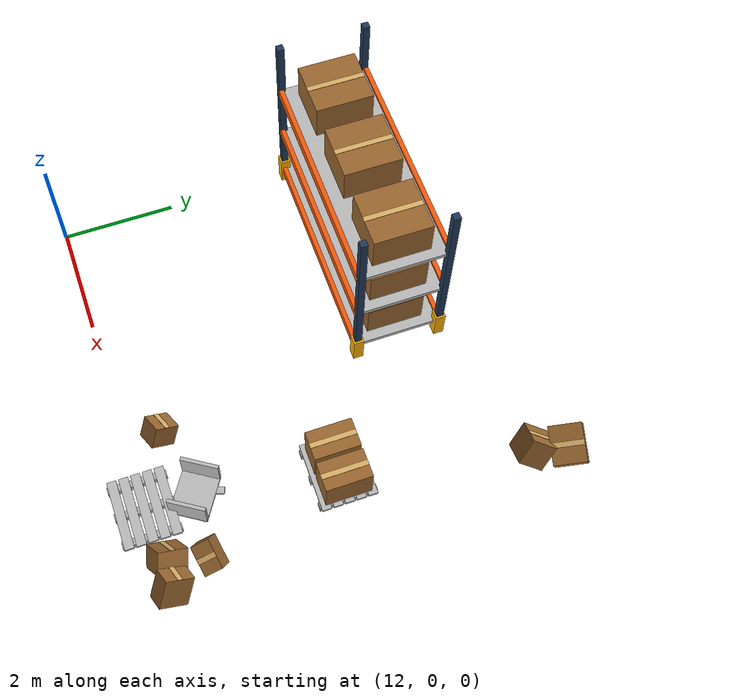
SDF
<sdf version="1.9">
 <world name="factory">
  <model name="rack_1_1_2">
   <static>true</static>
   <pose>14 5 0 0 0 0</pose>
   <link name="body">
    <visual name="post0_visual">
     <pose>-2 -0.75 1.8 0 0 0</pose>
     <geometry><box><size>0.12 0.12 3.6</size></box></geometry>
     <material><ambient>.12 .22 .34 1</ambient><diffuse>.12 .22 .34 1</diffuse></material>
    </visual>
    <collision name="post0_collision">
     <pose>-2 -0.75 1.8 0 0 0</pose>
     <geometry><box><size>0.12 0.12 3.6</size></box></geometry>
    </collision>
    <visual name="guard0_visual">
     <pose>-2 -0.75 0.275 0 0 0</pose>
     <geometry><box><size>0.18 0.18 0.55</size></box></geometry>
     <material><ambient>1 .7 .02 1</ambient><diffuse>1 .7 .02 1</diffuse></material>
    </visual>
    <collision name="guard0_collision">
     <pose>-2 -0.75 0.275 0 0 0</pose>
     <geometry><box><size>0.18 0.18 0.55</size></box></geometry>
    </collision>
    <visual name="post1_visual">
     <pose>2 -0.75 1.8 0 0 0</pose>
     <geometry><box><size>0.12 0.12 3.6</size></box></geometry>
     <material><ambient>.12 .22 .34 1</ambient><diffuse>.12 .22 .34 1</diffuse></material>
    </visual>
    <collision name="post1_collision">
     <pose>2 -0.75 1.8 0 0 0</pose>
     <geometry><box><size>0.12 0.12 3.6</size></box></geometry>
    </collision>
    <visual name="guard1_visual">
     <pose>2 -0.75 0.275 0 0 0</pose>
     <geometry><box><size>0.18 0.18 0.55</size></box></geometry>
     <material><ambient>1 .7 .02 1</ambient><diffuse>1 .7 .02 1</diffuse></material>
    </visual>
    <collision name="guard1_collision">
     <pose>2 -0.75 0.275 0 0 0</pose>
     <geometry><box><size>0.18 0.18 0.55</size></box></geometry>
    </collision>
    <visual name="post2_visual">
     <pose>-2 0.75 1.8 0 0 0</pose>
     <geometry><box><size>0.12 0.12 3.6</size></box></geometry>
     <material><ambient>.12 .22 .34 1</ambient><diffuse>.12 .22 .34 1</diffuse></material>
    </visual>
    <collision name="post2_collision">
     <pose>-2 0.75 1.8 0 0 0</pose>
     <geometry><box><size>0.12 0.12 3.6</size></box></geometry>
    </collision>
    <visual name="guard2_visual">
     <pose>-2 0.75 0.275 0 0 0</pose>
     <geometry><box><size>0.18 0.18 0.55</size></box></geometry>
     <material><ambient>1 .7 .02 1</ambient><diffuse>1 .7 .02 1</diffuse></material>
    </visual>
    <collision name="guard2_collision">
     <pose>-2 0.75 0.275 0 0 0</pose>
     <geometry><box><size>0.18 0.18 0.55</size></box></geometry>
    </collision>
    <visual name="post3_visual">
     <pose>2 0.75 1.8 0 0 0</pose>
     <geometry><box><size>0.12 0.12 3.6</size></box></geometry>
     <material><ambient>.12 .22 .34 1</ambient><diffuse>.12 .22 .34 1</diffuse></material>
    </visual>
    <collision name="post3_collision">
     <pose>2 0.75 1.8 0 0 0</pose>
     <geometry><box><size>0.12 0.12 3.6</size></box></geometry>
    </collision>
    <visual name="guard3_visual">
     <pose>2 0.75 0.275 0 0 0</pose>
     <geometry><box><size>0.18 0.18 0.55</size></box></geometry>
     <material><ambient>1 .7 .02 1</ambient><diffuse>1 .7 .02 1</diffuse></material>
    </visual>
    <collision name="guard3_collision">
     <pose>2 0.75 0.275 0 0 0</pose>
     <geometry><box><size>0.18 0.18 0.55</size></box></geometry>
    </collision>
    <visual name="shelf0_visual">
     <pose>0 0 0.3 0 0 0</pose>
     <geometry><mesh><uri>model://factory_scene_assets/meshes/wood_010.dae</uri></mesh></geometry>
    </visual>
    <collision name="shelf0_collision">
     <pose>0 0 0.3 0 0 0</pose>
     <geometry><box><size>4 1.5 0.08</size></box></geometry>
    </collision>
    <visual name="beam0_0_visual">
     <pose>0 -0.77 0.3 0 0 0</pose>
     <geometry><box><size>4 0.08 0.18</size></box></geometry>
     <material><ambient>.95 .35 .035 1</ambient><diffuse>.95 .35 .035 1</diffuse></material>
    </visual>
    <collision name="beam0_0_collision">
     <pose>0 -0.77 0.3 0 0 0</pose>
     <geometry><box><size>4 0.08 0.18</size></box></geometry>
    </collision>
    <visual name="beam0_1_visual">
     <pose>0 0.77 0.3 0 0 0</pose>
     <geometry><box><size>4 0.08 0.18</size></box></geometry>
     <material><ambient>.95 .35 .035 1</ambient><diffuse>.95 .35 .035 1</diffuse></material>
    </visual>
    <collision name="beam0_1_collision">
     <pose>0 0.77 0.3 0 0 0</pose>
     <geometry><box><size>4 0.08 0.18</size></box></geometry>
    </collision>
    <visual name="cargo0_0_visual">
     <pose>-1.35 0 0.665 0 0 0</pose>
     <geometry><box><size>0.95 1 0.65</size></box></geometry>
     <material><ambient>.60 .40 .18 1</ambient><diffuse>.60 .40 .18 1</diffuse></material>
    </visual>
    <collision name="cargo0_0_collision">
     <pose>-1.35 0 0.665 0 0 0</pose>
     <geometry><box><size>0.95 1 0.65</size></box></geometry>
    </collision>
    <visual name="cargo0_0_tape_visual">
     <pose>-1.35 0 0.993 0 0 0</pose>
     <geometry><box><size>0.09 1 0.006</size></box></geometry>
     <material><ambient>.85 .69 .4 1</ambient><diffuse>.85 .69 .4 1</diffuse></material>
    </visual>
    <visual name="cargo0_1_visual">
     <pose>0 0 0.665 0 0 0</pose>
     <geometry><box><size>0.95 1 0.65</size></box></geometry>
     <material><ambient>.60 .40 .18 1</ambient><diffuse>.60 .40 .18 1</diffuse></material>
    </visual>
    <collision name="cargo0_1_collision">
     <pose>0 0 0.665 0 0 0</pose>
     <geometry><box><size>0.95 1 0.65</size></box></geometry>
    </collision>
    <visual name="cargo0_1_tape_visual">
     <pose>0 0 0.993 0 0 0</pose>
     <geometry><box><size>0.09 1 0.006</size></box></geometry>
     <material><ambient>.85 .69 .4 1</ambient><diffuse>.85 .69 .4 1</diffuse></material>
    </visual>
    <visual name="cargo0_2_visual">
     <pose>1.35 0 0.665 0 0 0</pose>
     <geometry><box><size>0.95 1 0.65</size></box></geometry>
     <material><ambient>.60 .40 .18 1</ambient><diffuse>.60 .40 .18 1</diffuse></material>
    </visual>
    <collision name="cargo0_2_collision">
     <pose>1.35 0 0.665 0 0 0</pose>
     <geometry><box><size>0.95 1 0.65</size></box></geometry>
    </collision>
    <visual name="cargo0_2_tape_visual">
     <pose>1.35 0 0.993 0 0 0</pose>
     <geometry><box><size>0.09 1 0.006</size></box></geometry>
     <material><ambient>.85 .69 .4 1</ambient><diffuse>.85 .69 .4 1</diffuse></material>
    </visual>
    <visual name="shelf1_visual">
     <pose>0 0 1.4 0 0 0</pose>
     <geometry><mesh><uri>model://factory_scene_assets/meshes/wood_010.dae</uri></mesh></geometry>
    </visual>
    <collision name="shelf1_collision">
     <pose>0 0 1.4 0 0 0</pose>
     <geometry><box><size>4 1.5 0.08</size></box></geometry>
    </collision>
    <visual name="beam1_0_visual">
     <pose>0 -0.77 1.4 0 0 0</pose>
     <geometry><box><size>4 0.08 0.18</size></box></geometry>
     <material><ambient>.95 .35 .035 1</ambient><diffuse>.95 .35 .035 1</diffuse></material>
    </visual>
    <collision name="beam1_0_collision">
     <pose>0 -0.77 1.4 0 0 0</pose>
     <geometry><box><size>4 0.08 0.18</size></box></geometry>
    </collision>
    <visual name="beam1_1_visual">
     <pose>0 0.77 1.4 0 0 0</pose>
     <geometry><box><size>4 0.08 0.18</size></box></geometry>
     <material><ambient>.95 .35 .035 1</ambient><diffuse>.95 .35 .035 1</diffuse></material>
    </visual>
    <collision name="beam1_1_collision">
     <pose>0 0.77 1.4 0 0 0</pose>
     <geometry><box><size>4 0.08 0.18</size></box></geometry>
    </collision>
    <visual name="cargo1_0_visual">
     <pose>-1.35 0 1.765 0 0 0</pose>
     <geometry><box><size>0.95 1 0.65</size></box></geometry>
     <material><ambient>.60 .40 .18 1</ambient><diffuse>.60 .40 .18 1</diffuse></material>
    </visual>
    <collision name="cargo1_0_collision">
     <pose>-1.35 0 1.765 0 0 0</pose>
     <geometry><box><size>0.95 1 0.65</size></box></geometry>
    </collision>
    <visual name="cargo1_0_tape_visual">
     <pose>-1.35 0 2.093 0 0 0</pose>
     <geometry><box><size>0.09 1 0.006</size></box></geometry>
     <material><ambient>.85 .69 .4 1</ambient><diffuse>.85 .69 .4 1</diffuse></material>
    </visual>
    <visual name="cargo1_1_visual">
     <pose>0 0 1.765 0 0 0</pose>
     <geometry><box><size>0.95 1 0.65</size></box></geometry>
     <material><ambient>.60 .40 .18 1</ambient><diffuse>.60 .40 .18 1</diffuse></material>
    </visual>
    <collision name="cargo1_1_collision">
     <pose>0 0 1.765 0 0 0</pose>
     <geometry><box><size>0.95 1 0.65</size></box></geometry>
    </collision>
    <visual name="cargo1_1_tape_visual">
     <pose>0 0 2.093 0 0 0</pose>
     <geometry><box><size>0.09 1 0.006</size></box></geometry>
     <material><ambient>.85 .69 .4 1</ambient><diffuse>.85 .69 .4 1</diffuse></material>
    </visual>
    <visual name="cargo1_2_visual">
     <pose>1.35 0 1.765 0 0 0</pose>
     <geometry><box><size>0.95 1 0.65</size></box></geometry>
     <material><ambient>.60 .40 .18 1</ambient><diffuse>.60 .40 .18 1</diffuse></material>
    </visual>
    <collision name="cargo1_2_collision">
     <pose>1.35 0 1.765 0 0 0</pose>
     <geometry><box><size>0.95 1 0.65</size></box></geometry>
    </collision>
    <visual name="cargo1_2_tape_visual">
     <pose>1.35 0 2.093 0 0 0</pose>
     <geometry><box><size>0.09 1 0.006</size></box></geometry>
     <material><ambient>.85 .69 .4 1</ambient><diffuse>.85 .69 .4 1</diffuse></material>
    </visual>
    <visual name="shelf2_visual">
     <pose>0 0 2.5 0 0 0</pose>
     <geometry><mesh><uri>model://factory_scene_assets/meshes/wood_010.dae</uri></mesh></geometry>
    </visual>
    <collision name="shelf2_collision">
     <pose>0 0 2.5 0 0 0</pose>
     <geometry><box><size>4 1.5 0.08</size></box></geometry>
    </collision>
    <visual name="beam2_0_visual">
     <pose>0 -0.77 2.5 0 0 0</pose>
     <geometry><box><size>4 0.08 0.18</size></box></geometry>
     <material><ambient>.95 .35 .035 1</ambient><diffuse>.95 .35 .035 1</diffuse></material>
    </visual>
    <collision name="beam2_0_collision">
     <pose>0 -0.77 2.5 0 0 0</pose>
     <geometry><box><size>4 0.08 0.18</size></box></geometry>
    </collision>
    <visual name="beam2_1_visual">
     <pose>0 0.77 2.5 0 0 0</pose>
     <geometry><box><size>4 0.08 0.18</size></box></geometry>
     <material><ambient>.95 .35 .035 1</ambient><diffuse>.95 .35 .035 1</diffuse></material>
    </visual>
    <collision name="beam2_1_collision">
     <pose>0 0.77 2.5 0 0 0</pose>
     <geometry><box><size>4 0.08 0.18</size></box></geometry>
    </collision>
    <visual name="cargo2_0_visual">
     <pose>-1.35 0 2.865 0 0 0</pose>
     <geometry><box><size>0.95 1 0.65</size></box></geometry>
     <material><ambient>.60 .40 .18 1</ambient><diffuse>.60 .40 .18 1</diffuse></material>
    </visual>
    <collision name="cargo2_0_collision">
     <pose>-1.35 0 2.865 0 0 0</pose>
     <geometry><box><size>0.95 1 0.65</size></box></geometry>
    </collision>
    <visual name="cargo2_0_tape_visual">
     <pose>-1.35 0 3.193 0 0 0</pose>
     <geometry><box><size>0.09 1 0.006</size></box></geometry>
     <material><ambient>.85 .69 .4 1</ambient><diffuse>.85 .69 .4 1</diffuse></material>
    </visual>
    <visual name="cargo2_1_visual">
     <pose>0 0 2.865 0 0 0</pose>
     <geometry><box><size>0.95 1 0.65</size></box></geometry>
     <material><ambient>.60 .40 .18 1</ambient><diffuse>.60 .40 .18 1</diffuse></material>
    </visual>
    <collision name="cargo2_1_collision">
     <pose>0 0 2.865 0 0 0</pose>
     <geometry><box><size>0.95 1 0.65</size></box></geometry>
    </collision>
    <visual name="cargo2_1_tape_visual">
     <pose>0 0 3.193 0 0 0</pose>
     <geometry><box><size>0.09 1 0.006</size></box></geometry>
     <material><ambient>.85 .69 .4 1</ambient><diffuse>.85 .69 .4 1</diffuse></material>
    </visual>
    <visual name="cargo2_2_visual">
     <pose>1.35 0 2.865 0 0 0</pose>
     <geometry><box><size>0.95 1 0.65</size></box></geometry>
     <material><ambient>.60 .40 .18 1</ambient><diffuse>.60 .40 .18 1</diffuse></material>
    </visual>
    <collision name="cargo2_2_collision">
     <pose>1.35 0 2.865 0 0 0</pose>
     <geometry><box><size>0.95 1 0.65</size></box></geometry>
    </collision>
    <visual name="cargo2_2_tape_visual">
     <pose>1.35 0 3.193 0 0 0</pose>
     <geometry><box><size>0.09 1 0.006</size></box></geometry>
     <material><ambient>.85 .69 .4 1</ambient><diffuse>.85 .69 .4 1</diffuse></material>
    </visual>
   </link>
  </model>
  <model name="organized_pallet_1_2">
   <static>true</static>
   <pose>18 3.2 0 0 0 0</pose>
   <link name="body">
    <visual name="runner0_visual">
     <pose>-0.48 0 0.065 0 0 0</pose>
     <geometry><mesh><uri>model://factory_scene_assets/meshes/wood_011.dae</uri></mesh></geometry>
    </visual>
    <collision name="runner0_collision">
     <pose>-0.48 0 0.065 0 0 0</pose>
     <geometry><box><size>0.12 1 0.13</size></box></geometry>
    </collision>
    <visual name="runner1_visual">
     <pose>0 0 0.065 0 0 0</pose>
     <geometry><mesh><uri>model://factory_scene_assets/meshes/wood_011.dae</uri></mesh></geometry>
    </visual>
    <collision name="runner1_collision">
     <pose>0 0 0.065 0 0 0</pose>
     <geometry><box><size>0.12 1 0.13</size></box></geometry>
    </collision>
    <visual name="runner2_visual">
     <pose>0.48 0 0.065 0 0 0</pose>
     <geometry><mesh><uri>model://factory_scene_assets/meshes/wood_011.dae</uri></mesh></geometry>
    </visual>
    <collision name="runner2_collision">
     <pose>0.48 0 0.065 0 0 0</pose>
     <geometry><box><size>0.12 1 0.13</size></box></geometry>
    </collision>
    <visual name="plank0_visual">
     <pose>0 -0.4 0.155 0 0 0</pose>
     <geometry><mesh><uri>model://factory_scene_assets/meshes/wood_012.dae</uri></mesh></geometry>
    </visual>
    <collision name="plank0_collision">
     <pose>0 -0.4 0.155 0 0 0</pose>
     <geometry><box><size>1.2 0.16 0.05</size></box></geometry>
    </collision>
    <visual name="plank1_visual">
     <pose>0 -0.2 0.155 0 0 0</pose>
     <geometry><mesh><uri>model://factory_scene_assets/meshes/wood_012.dae</uri></mesh></geometry>
    </visual>
    <collision name="plank1_collision">
     <pose>0 -0.2 0.155 0 0 0</pose>
     <geometry><box><size>1.2 0.16 0.05</size></box></geometry>
    </collision>
    <visual name="plank2_visual">
     <pose>0 0 0.155 0 0 0</pose>
     <geometry><mesh><uri>model://factory_scene_assets/meshes/wood_012.dae</uri></mesh></geometry>
    </visual>
    <collision name="plank2_collision">
     <pose>0 0 0.155 0 0 0</pose>
     <geometry><box><size>1.2 0.16 0.05</size></box></geometry>
    </collision>
    <visual name="plank3_visual">
     <pose>0 0.2 0.155 0 0 0</pose>
     <geometry><mesh><uri>model://factory_scene_assets/meshes/wood_012.dae</uri></mesh></geometry>
    </visual>
    <collision name="plank3_collision">
     <pose>0 0.2 0.155 0 0 0</pose>
     <geometry><box><size>1.2 0.16 0.05</size></box></geometry>
    </collision>
    <visual name="plank4_visual">
     <pose>0 0.4 0.155 0 0 0</pose>
     <geometry><mesh><uri>model://factory_scene_assets/meshes/wood_012.dae</uri></mesh></geometry>
    </visual>
    <collision name="plank4_collision">
     <pose>0 0.4 0.155 0 0 0</pose>
     <geometry><box><size>1.2 0.16 0.05</size></box></geometry>
    </collision>
    <visual name="load0_visual">
     <pose>-0.28 0 0.505 0 0 0</pose>
     <geometry><box><size>0.5 0.8 0.65</size></box></geometry>
     <material><ambient>.60 .40 .18 1</ambient><diffuse>.60 .40 .18 1</diffuse></material>
    </visual>
    <collision name="load0_collision">
     <pose>-0.28 0 0.505 0 0 0</pose>
     <geometry><box><size>0.5 0.8 0.65</size></box></geometry>
    </collision>
    <visual name="load0_tape_visual">
     <pose>-0.28 0 0.833 0 0 0</pose>
     <geometry><box><size>0.09 0.8 0.006</size></box></geometry>
     <material><ambient>.85 .69 .4 1</ambient><diffuse>.85 .69 .4 1</diffuse></material>
    </visual>
    <visual name="load1_visual">
     <pose>0.28 0 0.505 0 0 0</pose>
     <geometry><box><size>0.5 0.8 0.65</size></box></geometry>
     <material><ambient>.60 .40 .18 1</ambient><diffuse>.60 .40 .18 1</diffuse></material>
    </visual>
    <collision name="load1_collision">
     <pose>0.28 0 0.505 0 0 0</pose>
     <geometry><box><size>0.5 0.8 0.65</size></box></geometry>
    </collision>
    <visual name="load1_tape_visual">
     <pose>0.28 0 0.833 0 0 0</pose>
     <geometry><box><size>0.09 0.8 0.006</size></box></geometry>
     <material><ambient>.85 .69 .4 1</ambient><diffuse>.85 .69 .4 1</diffuse></material>
    </visual>
   </link>
  </model>
  <model name="fallen_pallet_4">
   <static>true</static>
   <pose>17.6 0 0 0 0 0</pose>
   <link name="body">
    <visual name="runner0_visual">
     <pose>-0.48 0 0.065 0 0 0</pose>
     <geometry><mesh><uri>model://factory_scene_assets/meshes/wood_011.dae</uri></mesh></geometry>
    </visual>
    <collision name="runner0_collision">
     <pose>-0.48 0 0.065 0 0 0</pose>
     <geometry><box><size>0.12 1 0.13</size></box></geometry>
    </collision>
    <visual name="runner1_visual">
     <pose>0 0 0.065 0 0 0</pose>
     <geometry><mesh><uri>model://factory_scene_assets/meshes/wood_011.dae</uri></mesh></geometry>
    </visual>
    <collision name="runner1_collision">
     <pose>0 0 0.065 0 0 0</pose>
     <geometry><box><size>0.12 1 0.13</size></box></geometry>
    </collision>
    <visual name="runner2_visual">
     <pose>0.48 0 0.065 0 0 0</pose>
     <geometry><mesh><uri>model://factory_scene_assets/meshes/wood_011.dae</uri></mesh></geometry>
    </visual>
    <collision name="runner2_collision">
     <pose>0.48 0 0.065 0 0 0</pose>
     <geometry><box><size>0.12 1 0.13</size></box></geometry>
    </collision>
    <visual name="plank0_visual">
     <pose>0 -0.4 0.155 0 0 0</pose>
     <geometry><mesh><uri>model://factory_scene_assets/meshes/wood_012.dae</uri></mesh></geometry>
    </visual>
    <collision name="plank0_collision">
     <pose>0 -0.4 0.155 0 0 0</pose>
     <geometry><box><size>1.2 0.16 0.05</size></box></geometry>
    </collision>
    <visual name="plank1_visual">
     <pose>0 -0.2 0.155 0 0 0</pose>
     <geometry><mesh><uri>model://factory_scene_assets/meshes/wood_012.dae</uri></mesh></geometry>
    </visual>
    <collision name="plank1_collision">
     <pose>0 -0.2 0.155 0 0 0</pose>
     <geometry><box><size>1.2 0.16 0.05</size></box></geometry>
    </collision>
    <visual name="plank2_visual">
     <pose>0 0 0.155 0 0 0</pose>
     <geometry><mesh><uri>model://factory_scene_assets/meshes/wood_012.dae</uri></mesh></geometry>
    </visual>
    <collision name="plank2_collision">
     <pose>0 0 0.155 0 0 0</pose>
     <geometry><box><size>1.2 0.16 0.05</size></box></geometry>
    </collision>
    <visual name="plank3_visual">
     <pose>0 0.2 0.155 0 0 0</pose>
     <geometry><mesh><uri>model://factory_scene_assets/meshes/wood_012.dae</uri></mesh></geometry>
    </visual>
    <collision name="plank3_collision">
     <pose>0 0.2 0.155 0 0 0</pose>
     <geometry><box><size>1.2 0.16 0.05</size></box></geometry>
    </collision>
    <visual name="plank4_visual">
     <pose>0 0.4 0.155 0 0 0</pose>
     <geometry><mesh><uri>model://factory_scene_assets/meshes/wood_012.dae</uri></mesh></geometry>
    </visual>
    <collision name="plank4_collision">
     <pose>0 0.4 0.155 0 0 0</pose>
     <geometry><box><size>1.2 0.16 0.05</size></box></geometry>
    </collision>
   </link>
  </model>
  <model name="fallen_box_04_0">
   <static>true</static>
   <pose>18.6 0.134438 0 0 0 0</pose>
   <link name="body">
    <visual name="box_visual">
     <pose>0 0 0.3884788 0.8462538 -0.4188346 -1.565177</pose>
     <geometry><box><size>0.5086928 0.4635717 0.3847288</size></box></geometry>
     <material><ambient>.60 .40 .18 1</ambient><diffuse>.60 .40 .18 1</diffuse></material>
    </visual>
    <collision name="box_collision">
     <pose>0 0 0.3884788 0.8462538 -0.4188346 -1.565177</pose>
     <geometry><box><size>0.5086928 0.4635717 0.3847288</size></box></geometry>
    </collision>
    <visual name="box_tape_visual">
     <pose>-0.146583 0.05183864 0.5067726 0.8462538 -0.4188346 -1.565177</pose>
     <geometry><box><size>0.09 0.4635717 0.006</size></box></geometry>
     <material><ambient>.85 .69 .4 1</ambient><diffuse>.85 .69 .4 1</diffuse></material>
    </visual>
   </link>
  </model>
  <model name="fallen_box_04_2">
   <static>true</static>
   <pose>18.76 0.7824152 0 0 0 0</pose>
   <link name="body">
    <visual name="box_visual">
     <pose>0 0 0.3382343 -0.4292081 -0.3994183 -2.95129</pose>
     <geometry><box><size>0.5131777 0.3234692 0.3973707</size></box></geometry>
     <material><ambient>.60 .40 .18 1</ambient><diffuse>.60 .40 .18 1</diffuse></material>
    </visual>
    <collision name="box_collision">
     <pose>0 0 0.3382343 -0.4292081 -0.3994183 -2.95129</pose>
     <geometry><box><size>0.5131777 0.3234692 0.3973707</size></box></geometry>
    </collision>
    <visual name="box_tape_visual">
     <pose>0.08590642 -0.06892616 0.5071906 -0.4292081 -0.3994183 -2.95129</pose>
     <geometry><box><size>0.09 0.3234692 0.006</size></box></geometry>
     <material><ambient>.85 .69 .4 1</ambient><diffuse>.85 .69 .4 1</diffuse></material>
    </visual>
   </link>
  </model>
  <model name="fallen_box_04_3">
   <static>true</static>
   <pose>16.44 0.5915556 0 0 0 0</pose>
   <link name="body">
    <visual name="box_visual">
     <pose>0 0 0.3294993 0.3576177 -0.5397052 -1.419269</pose>
     <geometry><box><size>0.4316613 0.390017 0.3733979</size></box></geometry>
     <material><ambient>.60 .40 .18 1</ambient><diffuse>.60 .40 .18 1</diffuse></material>
    </visual>
    <collision name="box_collision">
     <pose>0 0 0.3294993 0.3576177 -0.5397052 -1.419269</pose>
     <geometry><box><size>0.4316613 0.390017 0.3733979</size></box></geometry>
    </collision>
    <visual name="box_tape_visual">
     <pose>-0.07942596 0.08024597 0.4819388 0.3576177 -0.5397052 -1.419269</pose>
     <geometry><box><size>0.09 0.390017 0.006</size></box></geometry>
     <material><ambient>.85 .69 .4 1</ambient><diffuse>.85 .69 .4 1</diffuse></material>
    </visual>
   </link>
  </model>
  <model name="fallen_box_04_6">
   <static>true</static>
   <pose>19.08 0.08661895 0 0 0 0</pose>
   <link name="body">
    <visual name="box_visual">
     <pose>0 0 0.3991687 0.5121535 -0.5290902 -1.554541</pose>
     <geometry><box><size>0.5041487 0.3300428 0.5106233</size></box></geometry>
     <material><ambient>.60 .40 .18 1</ambient><diffuse>.60 .40 .18 1</diffuse></material>
    </visual>
    <collision name="box_collision">
     <pose>0 0 0.3991687 0.5121535 -0.5290902 -1.554541</pose>
     <geometry><box><size>0.5041487 0.3300428 0.5106233</size></box></geometry>
    </collision>
    <visual name="box_tape_visual">
     <pose>-0.1284177 0.1115805 0.5935487 0.5121535 -0.5290902 -1.554541</pose>
     <geometry><box><size>0.09 0.3300428 0.006</size></box></geometry>
     <material><ambient>.85 .69 .4 1</ambient><diffuse>.85 .69 .4 1</diffuse></material>
    </visual>
   </link>
  </model>
  <model name="broken_crate_04">
   <static>true</static>
   <pose>17.6 0.85 0 0 0 -0.5708946</pose>
   <link name="body">
    <visual name="base_visual">
     <pose>0 0 0.03 0 0 0</pose>
     <geometry><mesh><uri>model://factory_scene_assets/meshes/wood_013.dae</uri></mesh></geometry>
    </visual>
    <collision name="base_collision">
     <pose>0 0 0.03 0 0 0</pose>
     <geometry><box><size>0.8 0.65 0.06</size></box></geometry>
    </collision>
    <visual name="side0_visual">
     <pose>-0.37 0 0.28 0 0 0</pose>
     <geometry><mesh><uri>model://factory_scene_assets/meshes/wood_014.dae</uri></mesh></geometry>
    </visual>
    <collision name="side0_collision">
     <pose>-0.37 0 0.28 0 0 0</pose>
     <geometry><box><size>0.06 0.65 0.5</size></box></geometry>
    </collision>
    <visual name="side1_visual">
     <pose>0.37 0 0.28 0 0 0</pose>
     <geometry><mesh><uri>model://factory_scene_assets/meshes/wood_014.dae</uri></mesh></geometry>
    </visual>
    <collision name="side1_collision">
     <pose>0.37 0 0.28 0 0 0</pose>
     <geometry><box><size>0.06 0.65 0.5</size></box></geometry>
    </collision>
   </link>
  </model>
  <model name="debris_plank_04_2">
   <static>true</static>
   <pose>17.60887 1.086071 0 0 0 -1.899687</pose>
   <link name="body">
    <visual name="wood_visual">
     <pose>0 0 0.023 0 0 0</pose>
     <geometry><mesh><uri>model://factory_scene_assets/meshes/wood_037.dae</uri></mesh></geometry>
    </visual>
    <collision name="wood_collision">
     <pose>0 0 0.023 0 0 0</pose>
     <geometry><box><size>0.5100005 0.12 0.045</size></box></geometry>
    </collision>
   </link>
  </model>
  <model name="fallen_box_05_2">
   <static>true</static>
   <pose>18.76 6.320107 0 0 0 0</pose>
   <link name="body">
    <visual name="box_visual">
     <pose>0 0 0.4190908 -0.5933636 -0.5238401 -0.1223795</pose>
     <geometry><box><size>0.512317 0.4617277 0.4713249</size></box></geometry>
     <material><ambient>.60 .40 .18 1</ambient><diffuse>.60 .40 .18 1</diffuse></material>
    </visual>
    <collision name="box_collision">
     <pose>0 0 0.4190908 -0.5933636 -0.5238401 -0.1223795</pose>
     <geometry><box><size>0.512317 0.4617277 0.4713249</size></box></geometry>
    </collision>
    <visual name="box_tape_visual">
     <pose>-0.08194374 0.144533 0.5904244 -0.5933636 -0.5238401 -0.1223795</pose>
     <geometry><box><size>0.09 0.4617277 0.006</size></box></geometry>
     <material><ambient>.85 .69 .4 1</ambient><diffuse>.85 .69 .4 1</diffuse></material>
    </visual>
   </link>
  </model>
  <model name="fallen_box_05_4">
   <static>true</static>
   <pose>18.92 6.889856 0 0 0 0</pose>
   <link name="body">
    <visual name="box_visual">
     <pose>0 0 0.4078298 0.3067147 0.2882646 -0.2124325</pose>
     <geometry><box><size>0.6512118 0.5579345 0.491274</size></box></geometry>
     <material><ambient>.60 .40 .18 1</ambient><diffuse>.60 .40 .18 1</diffuse></material>
    </visual>
    <collision name="box_collision">
     <pose>0 0 0.4078298 0.3067147 0.2882646 -0.2124325</pose>
     <geometry><box><size>0.6512118 0.5579345 0.491274</size></box></geometry>
    </collision>
    <visual name="box_tape_visual">
     <pose>0.05004339 -0.08759056 0.6350828 0.3067147 0.2882646 -0.2124325</pose>
     <geometry><box><size>0.09 0.5579345 0.006</size></box></geometry>
     <material><ambient>.85 .69 .4 1</ambient><diffuse>.85 .69 .4 1</diffuse></material>
    </visual>
   </link>
  </model>
 </world>
</sdf>
